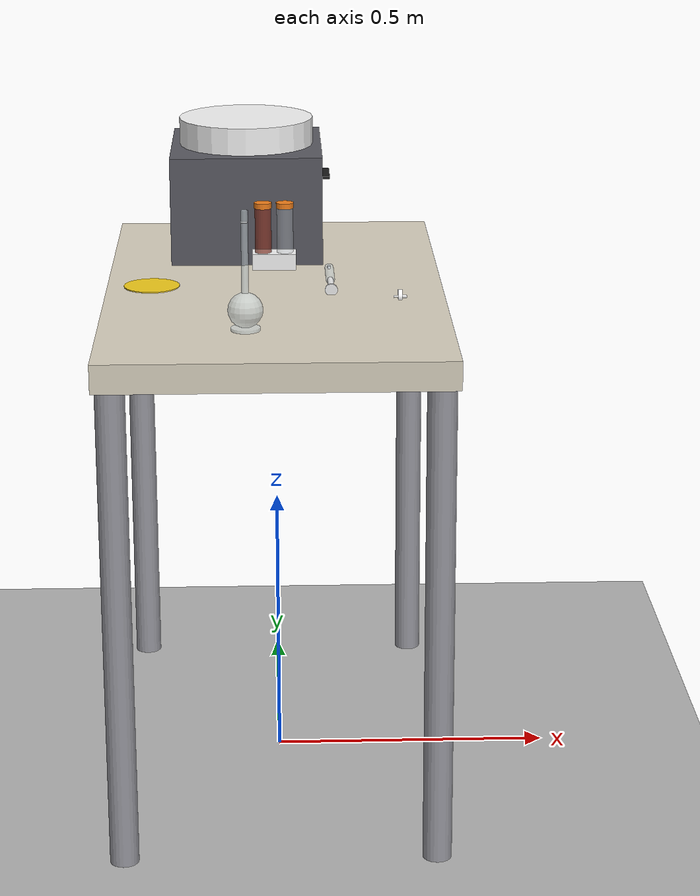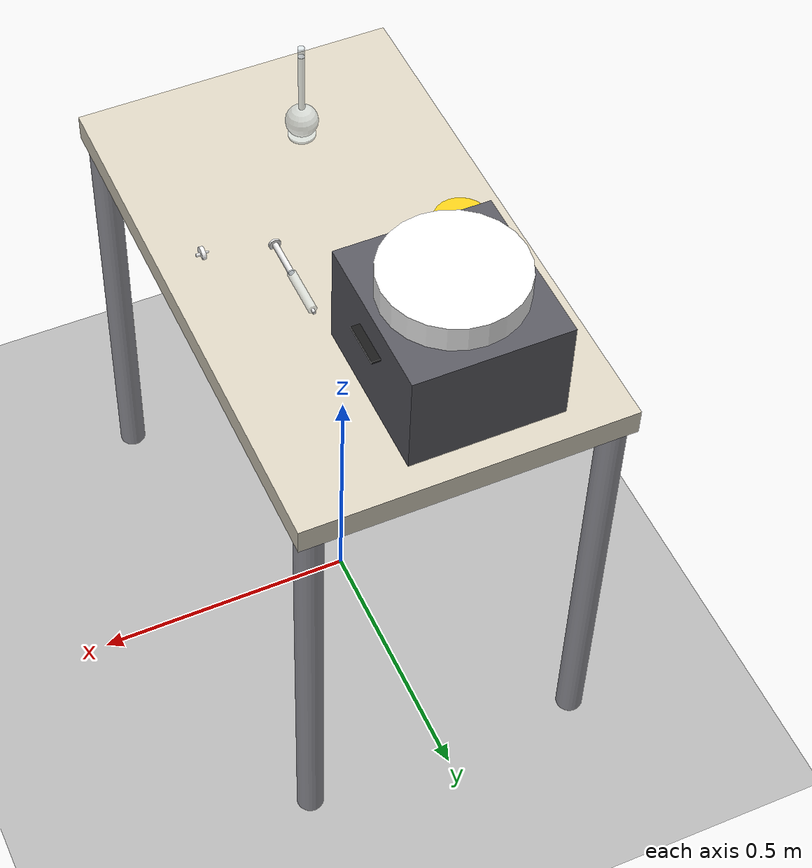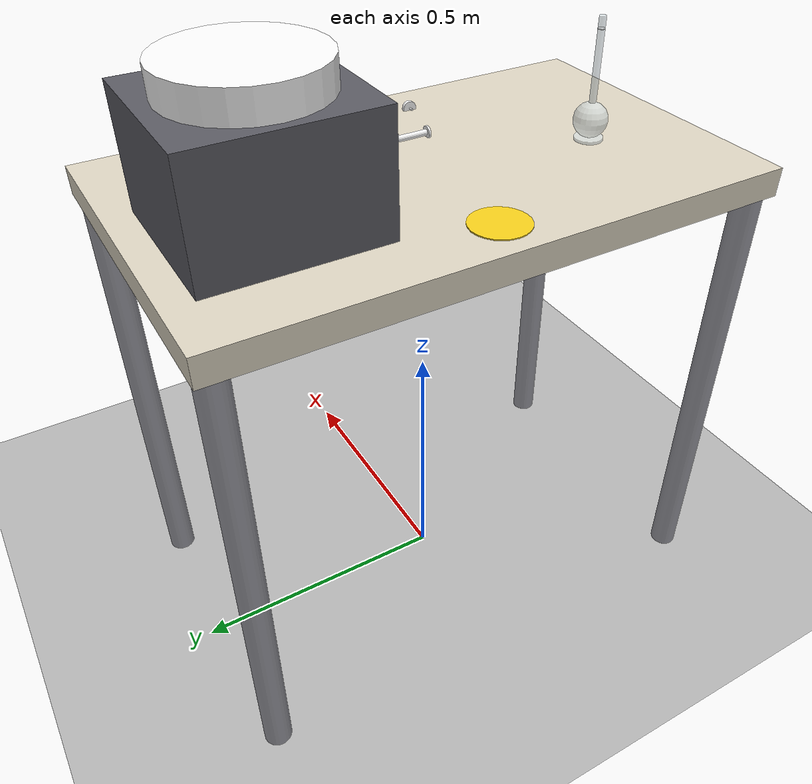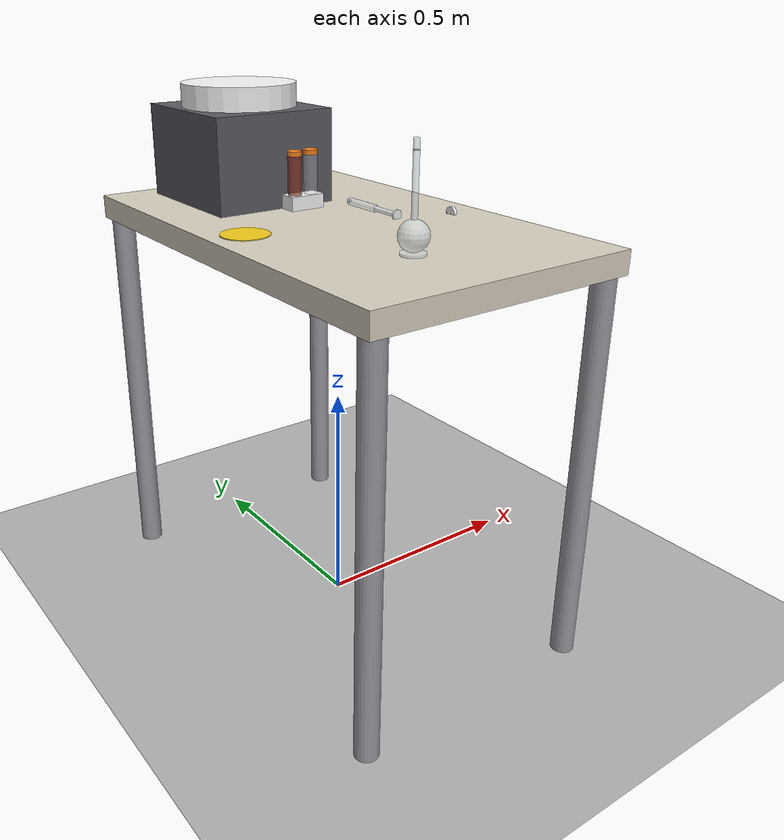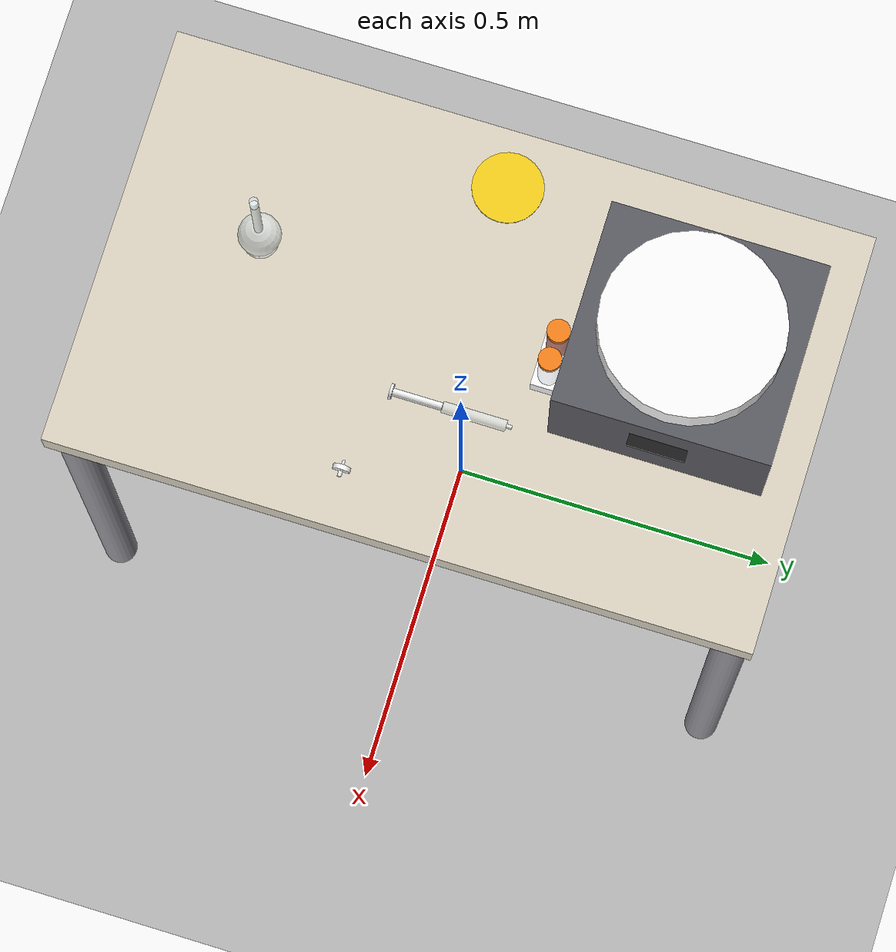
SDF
<?xml version="1.0" ?>
<sdf version="1.7">
  <world name="ketchup_filtering_cell">

    <light name="sun" type="directional">
      <cast_shadows>true</cast_shadows>
      <pose>0 0 10 0 0 0</pose>
      <diffuse>0.8 0.8 0.8 1</diffuse>
      <specular>0.2 0.2 0.2 1</specular>
      <attenuation>
        <range>1000</range>
        <constant>0.9</constant>
        <linear>0.01</linear>
        <quadratic>0.001</quadratic>
      </attenuation>
      <direction>-0.5 0.1 -0.9</direction>
    </light>

    <model name="ground_plane">
      <static>true</static>
      <link name="link">
        <collision name="c">
          <geometry><plane><normal>0 0 1</normal><size>100 100</size></plane></geometry>
        </collision>
        <visual name="v">
          <geometry><plane><normal>0 0 1</normal><size>100 100</size></plane></geometry>
          <material>
            <ambient>0.60 0.60 0.60 1</ambient>
            <diffuse>0.70 0.70 0.70 1</diffuse>
          </material>
        </visual>
      </link>
    </model>

    <model name="bench">
      <static>true</static>
      <pose>0 0 0 0 0 0</pose>
      <link name="link">
        <visual name="top">
          <pose>0 0 0.875 0 0 0</pose>
          <geometry><box><size>0.60 1.00 0.05</size></box></geometry>
          <material><ambient>0.85 0.82 0.75 1</ambient><diffuse>0.85 0.82 0.75 1</diffuse></material>
        </visual>
        <collision name="top_c">
          <pose>0 0 0.875 0 0 0</pose>
          <geometry><box><size>0.60 1.00 0.05</size></box></geometry>
        </collision>
        <visual name="leg_fr">
          <pose>0.27 -0.47 0.425 0 0 0</pose>
          <geometry><cylinder><radius>0.025</radius><length>0.850</length></cylinder></geometry>
          <material><ambient>0.45 0.45 0.48 1</ambient><diffuse>0.60 0.60 0.63 1</diffuse></material>
        </visual>
        <collision name="leg_fr_c">
          <pose>0.27 -0.47 0.425 0 0 0</pose>
          <geometry><cylinder><radius>0.025</radius><length>0.850</length></cylinder></geometry>
        </collision>
        <visual name="leg_fl">
          <pose>0.27 0.47 0.425 0 0 0</pose>
          <geometry><cylinder><radius>0.025</radius><length>0.850</length></cylinder></geometry>
          <material><ambient>0.45 0.45 0.48 1</ambient><diffuse>0.60 0.60 0.63 1</diffuse></material>
        </visual>
        <collision name="leg_fl_c">
          <pose>0.27 0.47 0.425 0 0 0</pose>
          <geometry><cylinder><radius>0.025</radius><length>0.850</length></cylinder></geometry>
        </collision>
        <visual name="leg_br">
          <pose>-0.27 -0.47 0.425 0 0 0</pose>
          <geometry><cylinder><radius>0.025</radius><length>0.850</length></cylinder></geometry>
          <material><ambient>0.45 0.45 0.48 1</ambient><diffuse>0.60 0.60 0.63 1</diffuse></material>
        </visual>
        <collision name="leg_br_c">
          <pose>-0.27 -0.47 0.425 0 0 0</pose>
          <geometry><cylinder><radius>0.025</radius><length>0.850</length></cylinder></geometry>
        </collision>
        <visual name="leg_bl">
          <pose>-0.27 0.47 0.425 0 0 0</pose>
          <geometry><cylinder><radius>0.025</radius><length>0.850</length></cylinder></geometry>
          <material><ambient>0.45 0.45 0.48 1</ambient><diffuse>0.60 0.60 0.63 1</diffuse></material>
        </visual>
        <collision name="leg_bl_c">
          <pose>-0.27 0.47 0.425 0 0 0</pose>
          <geometry><cylinder><radius>0.025</radius><length>0.850</length></cylinder></geometry>
        </collision>
      </link>
    </model>

    <!-- Arm base marker - same position as the other worlds. -->
    <model name="arm_base_marker">
      <static>true</static>
      <pose>-0.22 0.00 0.901 0 0 0</pose>
      <link name="disc">
        <visual name="v">
          <geometry><cylinder><radius>0.05</radius><length>0.002</length></cylinder></geometry>
          <material><ambient>0.95 0.80 0.10 1</ambient><diffuse>0.95 0.80 0.10 1</diffuse></material>
        </visual>
      </link>
    </model>

    <model name="centrifuge">
      <static>true</static>
      <pose>-0.05 0.30 0.900 0 0 0</pose>
      <link name="link">
        <visual name="body">
          <pose>0 0 0.100 0 0 0</pose>
          <geometry><box><size>0.28 0.30 0.20</size></box></geometry>
          <material><ambient>0.25 0.25 0.28 1</ambient><diffuse>0.35 0.35 0.38 1</diffuse></material>
        </visual>
        <collision name="body_c">
          <pose>0 0 0.100 0 0 0</pose>
          <geometry><box><size>0.28 0.30 0.20</size></box></geometry>
        </collision>
        <visual name="lid">
          <pose>0 0 0.225 0 0 0</pose>
          <geometry><cylinder><radius>0.125</radius><length>0.050</length></cylinder></geometry>
          <material><ambient>0.92 0.92 0.92 1</ambient><diffuse>0.97 0.97 0.97 1</diffuse></material>
        </visual>
        <collision name="lid_c">
          <pose>0 0 0.225 0 0 0</pose>
          <geometry><cylinder><radius>0.125</radius><length>0.050</length></cylinder></geometry>
        </collision>
        <visual name="display">
          <pose>0.141 0 0.140 0 1.5708 0</pose>
          <geometry><box><size>0.005 0.080 0.030</size></box></geometry>
          <material>
            <ambient>0.05 0.05 0.05 1</ambient>
            <diffuse>0.10 0.10 0.10 1</diffuse>
            <emissive>0.00 0.20 0.05 1</emissive>
          </material>
        </visual>
      </link>
    </model>

    <model name="tube_rack">
      <static>true</static>
      <pose>0.00 0.15 0.915 0 0 0</pose>
      <link name="link">
        <visual name="v">
          <geometry><box><size>0.08 0.08 0.030</size></box></geometry>
          <material><ambient>0.92 0.92 0.92 1</ambient><diffuse>0.97 0.97 0.97 1</diffuse></material>
        </visual>
        <collision name="c">
          <geometry><box><size>0.08 0.08 0.030</size></box></geometry>
        </collision>
      </link>
    </model>

    <model name="falcon_tube_pre">
      <pose>-0.020 0.130 0.9575 0 0 0</pose>
      <link name="link">
        <inertial>
          <mass>0.025</mass>
          <inertia>
            <ixx>5.0e-5</ixx><iyy>5.0e-5</iyy><izz>1.5e-5</izz>
            <ixy>0</ixy><ixz>0</ixz><iyz>0</iyz>
          </inertia>
        </inertial>
        <visual name="body">
          <geometry><cylinder><radius>0.015</radius><length>0.115</length></cylinder></geometry>
          <material>
            <ambient>0.45 0.18 0.12 0.70</ambient>
            <diffuse>0.60 0.22 0.15 0.70</diffuse>
          </material>
        </visual>
        <visual name="cap">
          <pose>0 0 0.060 0 0 0</pose>
          <geometry><cylinder><radius>0.016</radius><length>0.010</length></cylinder></geometry>
          <material><ambient>0.85 0.40 0.05 1</ambient><diffuse>0.95 0.50 0.10 1</diffuse></material>
        </visual>
        <collision name="c">
          <geometry><cylinder><radius>0.015</radius><length>0.115</length></cylinder></geometry>
        </collision>
      </link>
    </model>
    <model name="falcon_tube_post">
      <pose>0.020 0.130 0.9575 0 0 0</pose>
      <link name="link">
        <inertial>
          <mass>0.025</mass>
          <inertia>
            <ixx>5.0e-5</ixx><iyy>5.0e-5</iyy><izz>1.5e-5</izz>
            <ixy>0</ixy><ixz>0</ixz><iyz>0</iyz>
          </inertia>
        </inertial>
        <!-- Pellet at the bottom (dark, opaque). -->
        <visual name="pellet">
          <pose>0 0 -0.050 0 0 0</pose>
          <geometry><cylinder><radius>0.0145</radius><length>0.015</length></cylinder></geometry>
          <material><ambient>0.30 0.08 0.04 1</ambient><diffuse>0.40 0.10 0.05 1</diffuse></material>
        </visual>
        <!-- Supernatant above (translucent light reddish). -->
        <visual name="supernatant">
          <pose>0 0 0.000 0 0 0</pose>
          <geometry><cylinder><radius>0.0145</radius><length>0.085</length></cylinder></geometry>
          <material>
            <ambient>0.70 0.55 0.45 0.55</ambient>
            <diffuse>0.85 0.65 0.55 0.55</diffuse>
          </material>
        </visual>
        <!-- Outer glass wrap (clear). -->
        <visual name="glass">
          <geometry><cylinder><radius>0.015</radius><length>0.115</length></cylinder></geometry>
          <material>
            <ambient>0.88 0.92 0.95 0.30</ambient>
            <diffuse>0.88 0.92 0.95 0.30</diffuse>
          </material>
        </visual>
        <visual name="cap">
          <pose>0 0 0.060 0 0 0</pose>
          <geometry><cylinder><radius>0.016</radius><length>0.010</length></cylinder></geometry>
          <material><ambient>0.85 0.40 0.05 1</ambient><diffuse>0.95 0.50 0.10 1</diffuse></material>
        </visual>
        <collision name="c">
          <geometry><cylinder><radius>0.015</radius><length>0.115</length></cylinder></geometry>
        </collision>
      </link>
    </model>

    <model name="source_flask_100ml">
      <pose>-0.05 -0.30 0.900 0 0 0</pose>
      <link name="link">
        <inertial>
          <pose>0 0 0.090 0 0 0</pose>
          <mass>0.150</mass>
          <inertia>
            <ixx>5.0e-4</ixx><iyy>5.0e-4</iyy><izz>5.0e-5</izz>
            <ixy>0</ixy><ixz>0</ixz><iyz>0</iyz>
          </inertia>
        </inertial>
        <visual name="foot">
          <pose>0 0 0.0025 0 0 0</pose>
          <geometry><cylinder><radius>0.025</radius><length>0.005</length></cylinder></geometry>
          <material><ambient>0.85 0.90 0.92 0.55</ambient><diffuse>0.85 0.90 0.92 0.55</diffuse></material>
        </visual>
        <visual name="bulb">
          <pose>0 0 0.035 0 0 0</pose>
          <geometry><sphere><radius>0.030</radius></sphere></geometry>
          <material><ambient>0.85 0.90 0.92 0.55</ambient><diffuse>0.85 0.90 0.92 0.55</diffuse></material>
        </visual>
        <visual name="bulb_content">
          <pose>0 0 0.030 0 0 0</pose>
          <geometry><sphere><radius>0.024</radius></sphere></geometry>
          <material>
            <ambient>0.70 0.45 0.35 0.70</ambient>
            <diffuse>0.85 0.55 0.40 0.70</diffuse>
          </material>
        </visual>
        <visual name="neck">
          <pose>0 0 0.135 0 0 0</pose>
          <geometry><cylinder><radius>0.006</radius><length>0.140</length></cylinder></geometry>
          <material><ambient>0.85 0.90 0.92 0.55</ambient><diffuse>0.85 0.90 0.92 0.55</diffuse></material>
        </visual>
        <visual name="ring">
          <pose>0 0 0.185 0 0 0</pose>
          <geometry><cylinder><radius>0.00625</radius><length>0.001</length></cylinder></geometry>
          <material><ambient>0.95 0.95 0.95 1</ambient><diffuse>0.98 0.98 0.98 1</diffuse></material>
        </visual>
        <collision name="c">
          <geometry><cylinder><radius>0.030</radius><length>0.205</length></cylinder></geometry>
        </collision>
      </link>
    </model>

    <model name="syringe_10ml">
      <pose>0.10 0.05 0.908 1.5708 0 0</pose>
      <link name="link">
        <inertial>
          <mass>0.025</mass>
          <inertia>
            <ixx>5.0e-6</ixx><iyy>4.0e-5</iyy><izz>4.0e-5</izz>
            <ixy>0</ixy><ixz>0</ixz><iyz>0</iyz>
          </inertia>
        </inertial>
        <visual name="barrel">
          <pose>0 0 0 0 0 0</pose>
          <geometry><cylinder><radius>0.008</radius><length>0.090</length></cylinder></geometry>
          <material>
            <ambient>0.85 0.92 0.95 0.45</ambient>
            <diffuse>0.88 0.94 0.97 0.45</diffuse>
          </material>
        </visual>
        <visual name="plunger">
          <pose>0 0 0.080 0 0 0</pose>
          <geometry><cylinder><radius>0.0055</radius><length>0.070</length></cylinder></geometry>
          <material><ambient>0.85 0.85 0.85 1</ambient><diffuse>0.93 0.93 0.93 1</diffuse></material>
        </visual>
        <visual name="plunger_pad">
          <pose>0 0 0.117 0 0 0</pose>
          <geometry><cylinder><radius>0.011</radius><length>0.004</length></cylinder></geometry>
          <material><ambient>0.85 0.85 0.85 1</ambient><diffuse>0.93 0.93 0.93 1</diffuse></material>
        </visual>
        <visual name="luer_tip">
          <pose>0 0 -0.049 0 0 0</pose>
          <geometry><cylinder><radius>0.003</radius><length>0.008</length></cylinder></geometry>
          <material><ambient>0.85 0.85 0.85 1</ambient><diffuse>0.93 0.93 0.93 1</diffuse></material>
        </visual>
        <collision name="c">
          <pose>0 0 0.020 0 0 0</pose>
          <geometry><cylinder><radius>0.011</radius><length>0.160</length></cylinder></geometry>
        </collision>
      </link>
    </model>

    <model name="syringe_filter">
      <pose>0.22 -0.10 0.9035 0 1.5708 0</pose>
      <link name="link">
        <inertial>
          <mass>0.005</mass>
          <inertia>
            <ixx>3.0e-7</ixx><iyy>3.0e-7</iyy><izz>5.0e-7</izz>
            <ixy>0</ixy><ixz>0</ixz><iyz>0</iyz>
          </inertia>
        </inertial>
        <visual name="disc">
          <geometry><cylinder><radius>0.0125</radius><length>0.007</length></cylinder></geometry>
          <material><ambient>0.95 0.95 0.95 1</ambient><diffuse>0.98 0.98 0.98 1</diffuse></material>
        </visual>
        <visual name="inlet">
          <pose>0 0 0.0075 0 0 0</pose>
          <geometry><cylinder><radius>0.003</radius><length>0.008</length></cylinder></geometry>
          <material><ambient>0.85 0.85 0.85 1</ambient><diffuse>0.93 0.93 0.93 1</diffuse></material>
        </visual>
        <visual name="outlet">
          <pose>0 0 -0.0075 0 0 0</pose>
          <geometry><cylinder><radius>0.002</radius><length>0.008</length></cylinder></geometry>
          <material><ambient>0.85 0.85 0.85 1</ambient><diffuse>0.93 0.93 0.93 1</diffuse></material>
        </visual>
        <collision name="c">
          <geometry><cylinder><radius>0.0125</radius><length>0.023</length></cylinder></geometry>
        </collision>
      </link>
    </model>

    <model name="beaker_100ml_stl">
      <pose>0.05 -0.15 0.900 0 0 0</pose>
      <link name="link">
        <inertial>
          <mass>0.075</mass>
          <inertia>
            <ixx>4.4e-5</ixx><iyy>4.4e-5</iyy><izz>2.3e-5</izz>
            <ixy>0</ixy><ixz>0</ixz><iyz>0</iyz>
          </inertia>
        </inertial>
        <visual name="v">
          <geometry>
            <mesh>
              <uri>Beaker.stl</uri>
              <scale>0.001 0.001 0.001</scale>
            </mesh>
          </geometry>
          <!-- STL carries no colour; force translucent glass here. -->
          <material>
            <ambient>0.85 0.90 0.92 0.55</ambient>
            <diffuse>0.85 0.90 0.92 0.55</diffuse>
          </material>
        </visual>
        <collision name="c">
          <geometry><cylinder><radius>0.025</radius><length>0.070</length></cylinder></geometry>
        </collision>
      </link>
    </model>

  </world>
</sdf>
